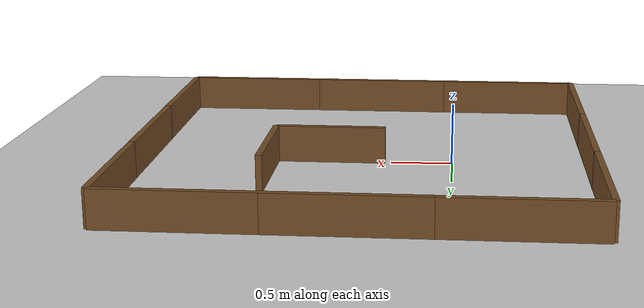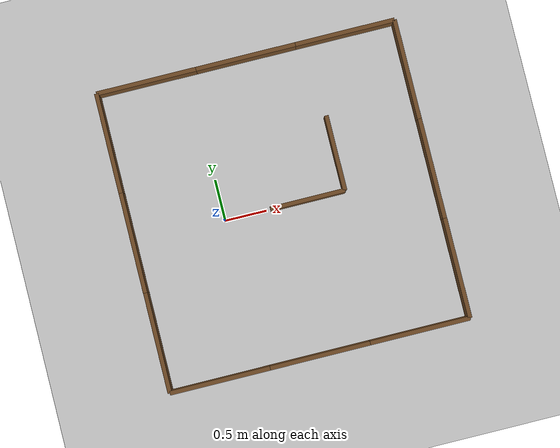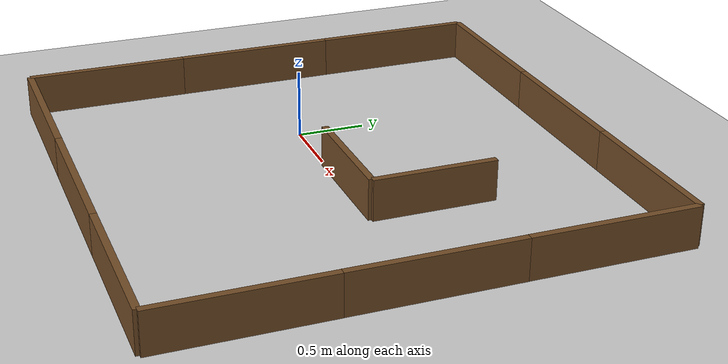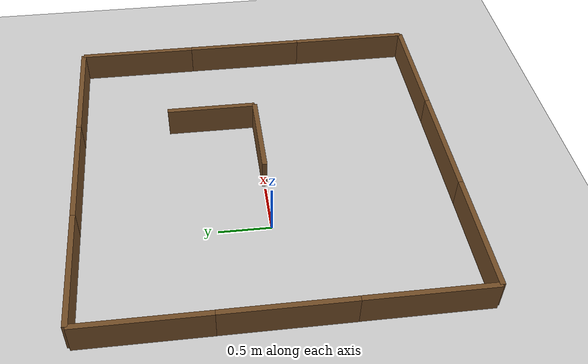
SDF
<sdf version="1.7">
 <world name="square_sign_ign">
  <physics name="default_physics" type="ode">
   <max_step_size>0.005</max_step_size>
   <real_time_factor>1.0</real_time_factor>
   <real_time_update_rate>200</real_time_update_rate>
  </physics>
  <plugin filename="libignition-gazebo6-physics-system.so" name="ignition::gazebo::systems::Physics"/>
  <plugin filename="libignition-gazebo6-user-commands-system.so" name="ignition::gazebo::systems::UserCommands"/>
  <plugin filename="libignition-gazebo6-scene-broadcaster-system.so" name="ignition::gazebo::systems::SceneBroadcaster"/>
  <plugin filename="libignition-gazebo6-sensors-system.so" name="ignition::gazebo::systems::Sensors">
   <render_engine>ogre2</render_engine>
  </plugin>
  <scene>
   <ambient>0.6 0.6 0.6 1</ambient>
   <background>0.8 0.8 0.8 1</background>
   <shadows>false</shadows>
   <grid>true</grid>
  </scene>
  <light type="directional" name="sun">
   <cast_shadows>false</cast_shadows>
   <pose>0 0 10 0 0 0</pose>
   <diffuse>0.8 0.8 0.8 1</diffuse>
   <specular>0.2 0.2 0.2 1</specular>
   <direction>-0.5 0.1 -0.9</direction>
  </light>
  <model name="ground_plane">
   <static>true</static>
   <link name="link">
    <collision name="collision">
     <geometry><plane><normal>0 0 1</normal><size>20 20</size></plane></geometry>
    </collision>
    <visual name="visual">
     <geometry><plane><normal>0 0 1</normal><size>20 20</size></plane></geometry>
     <material>
      <ambient>0.8 0.8 0.8 1</ambient>
      <diffuse>0.8 0.8 0.8 1</diffuse>
      <specular>0.1 0.1 0.1 1</specular>
     </material>
    </visual>
   </link>
  </model>
  <include><uri>model://wall120cm</uri><name>wall120_1</name><pose>2.5 0 0.15 0 0 1.57</pose></include>
  <include><uri>model://wall90cm</uri><name>wall90_1</name><pose>1 0 0.15 0 0 0</pose></include>
  <include><uri>model://wall120cm</uri><name>wall120_2</name><pose>2.5 1.2 0.15 0 0 1.57</pose></include>
  <include><uri>model://wall120cm</uri><name>wall120_3</name><pose>2.5 -1.2 0.15 0 0 1.57</pose></include>
  <include><uri>model://wall120cm</uri><name>wall120_4</name><pose>1.9 -1.8 0.15 0 0 0</pose></include>
  <include><uri>model://wall120cm</uri><name>wall120_5</name><pose>1.9 1.8 0.15 0 0 0</pose></include>
  <include><uri>model://wall120cm</uri><name>wall120_6</name><pose>0.7 1.8 0.15 0 0 0</pose></include>
  <include><uri>model://wall120cm</uri><name>wall120_7</name><pose>-0.5 1.8 0.15 0 0 0</pose></include>
  <include><uri>model://wall120cm</uri><name>wall120_8</name><pose>0.7 -1.8 0.15 0 0 0</pose></include>
  <include><uri>model://wall120cm</uri><name>wall120_9</name><pose>-0.5 -1.8 0.15 0 0 0</pose></include>
  <include><uri>model://wall120cm</uri><name>wall120_10</name><pose>-1.1 0 0.15 0 0 1.57</pose></include>
  <include><uri>model://wall120cm</uri><name>wall120_11</name><pose>-1.1 1.2 0.15 0 0 1.57</pose></include>
  <include><uri>model://wall120cm</uri><name>wall120_12</name><pose>-1.1 -1.2 0.15 0 0 1.57</pose></include>
  <include><uri>model://wall90cm</uri><name>wall90_2</name><pose>1.45 0.45 0.15 0 0 1.57</pose></include>
 </world>
</sdf>

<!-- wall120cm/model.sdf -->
<sdf version="1.7">
  <model name="wall120cm">
    <static>true</static>

    <link name="link">

      <collision name="collision">
        <geometry>
          <box>
            <size>1.2 0.05 0.3</size>
          </box>
        </geometry>
      </collision>

      <visual name="visual">
        <geometry>
          <box>
            <size>1.2 0.05 0.3</size>
          </box>
        </geometry>

        <material>
          <ambient>0.45 0.30 0.15 1</ambient>
          <diffuse>0.45 0.30 0.15 1</diffuse>
          <specular>0.05 0.05 0.05 1</specular>
        </material>
      </visual>

    </link>
  </model>
</sdf>

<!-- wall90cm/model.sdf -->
<sdf version="1.7">
  <model name="wall90cm">
    <static>true</static>

    <pose>0 0 0 0 0 0</pose>

    <link name="link">
      <collision name="collision">
        <geometry>
          <box>
            <size>0.9 0.05 0.3</size>
          </box>
        </geometry>
      </collision>

      <visual name="visual">
        <geometry>
          <box>
            <size>0.9 0.05 0.3</size>
          </box>
        </geometry>

        <!-- Material portable (Ignition + gz-sim) -->
        <material>
          <!-- “wood-ish” simple -->
          <ambient>0.45 0.30 0.15 1</ambient>
          <diffuse>0.45 0.30 0.15 1</diffuse>
          <specular>0.05 0.05 0.05 1</specular>
        </material>
      </visual>
    </link>
  </model>
</sdf>
